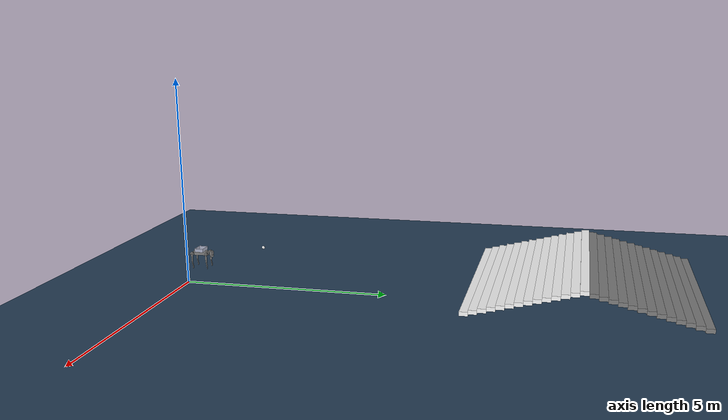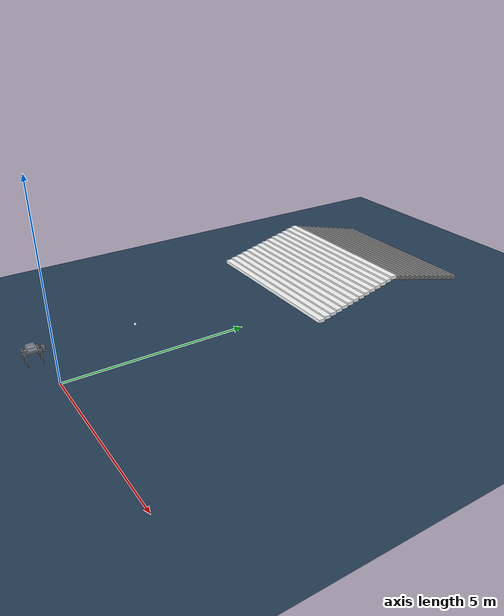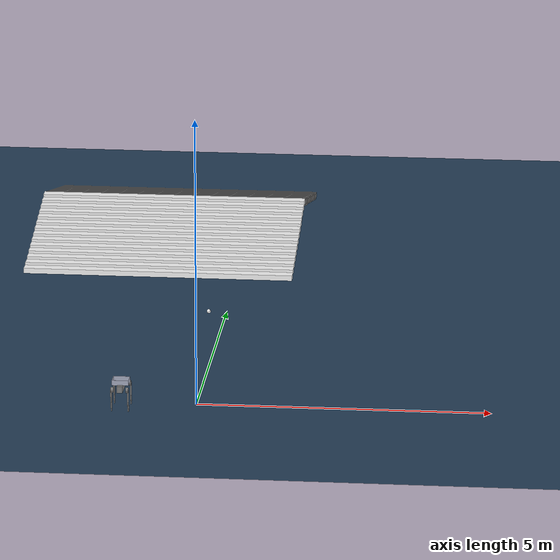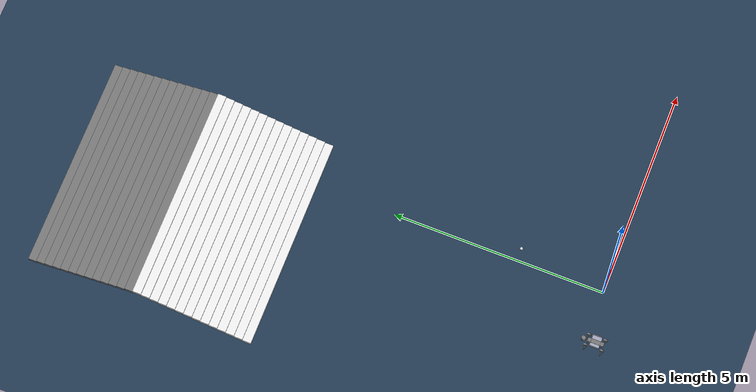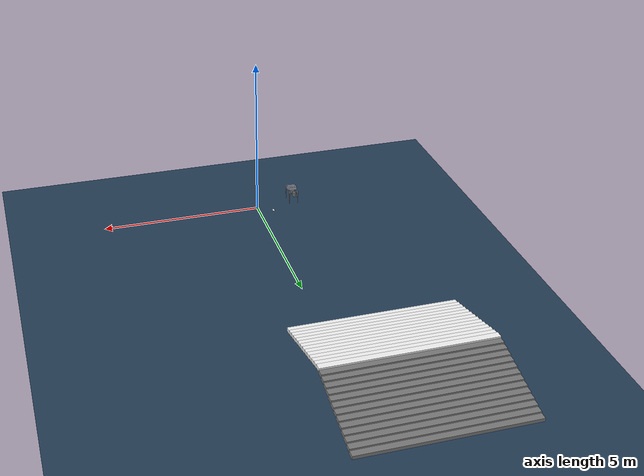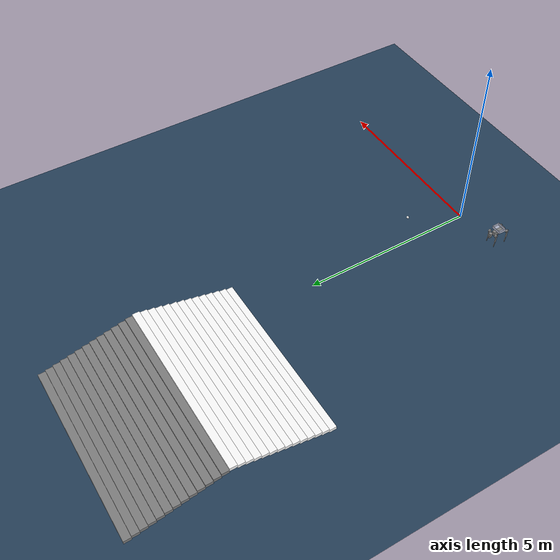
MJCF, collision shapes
<mujoco model="go2 scene">
  <include file="go2.xml" />
  <option timestep="0.005"/>

  <statistic center="0 0 0.1" extent="0.8" />

  <visual>
    <headlight diffuse="0.6 0.6 0.6" ambient="0.3 0.3 0.3" specular="0 0 0" />
    <rgba haze="0.15 0.25 0.35 1" />
    <global azimuth="-130" elevation="-20" />
  </visual>

  <asset>
    <texture type="skybox" builtin="gradient" rgb1="0.3 0.5 0.7" rgb2="0 0 0" width="512" height="3072" />
    <texture type="2d" name="groundplane" builtin="checker" mark="edge" rgb1="0.2 0.3 0.4" rgb2="0.1 0.2 0.3" markrgb="0.8 0.8 0.8" width="300" height="300" />
    <material name="groundplane" texture="groundplane" texuniform="true" texrepeat="5 5" reflectance="0.2" />
    <hfield name="perlin_hfield" size="1.25 0.75 0.125 0.125" file="../height_field.png" />
    <hfield name="image_hfield" size="1.0 1.0 0.02 0.1" file="../unitree_hfield.png" />
  </asset>

  <worldbody>
    <light pos="0 0 1.5" dir="0 0 -1" directional="true" />
    <geom name="floor" size="0 0 0.05" type="plane" material="groundplane" />
    <!-- ball -->
  <body name="ball_body" pos="0.0 2.0 1.0">
    <joint type="free" name="ball_joint"/>
    <geom type="sphere" size="0.035" rgba="1.0 1.0 1.0 1.0" mass="0.1" contype="1" conaffinity="1"/>
</body>

    <geom pos="-1.5 7 0.05" type="box" size="0.1 2.5 0.05" quat="0.707 0 0 0.707" rgba="1 1 1 0.8" />
    <geom pos="-1.5 7.2 0.1" type="box" size="0.1 2.5 0.05" quat="0.707 0 0 0.707" rgba="1 1 1 0.8"/>
    <geom pos="-1.5 7.4 0.15" type="box" size="0.1 2.5 0.05" quat="0.707 0 0 0.707" rgba="1 1 1 0.8"/>
    <geom pos="-1.5 7.6 0.2" type="box" size="0.1 2.5 0.05" quat="0.707 0 0 0.707" rgba="1 1 1 0.8"/>
    <geom pos="-1.5 7.8 0.25" type="box" size="0.1 2.5 0.05" quat="0.707 0 0 0.707" rgba="1 1 1 0.8"/>
    <geom pos="-1.5 8.0 0.3" type="box" size="0.1 2.5 0.05" quat="0.707 0 0 0.707" rgba="1 1 1 0.8"/>
    <geom pos="-1.5 8.2 0.35" type="box" size="0.1 2.5 0.05" quat="0.707 0 0 0.707" rgba="1 1 1 0.8"/>
    <geom pos="-1.5 8.4 0.4" type="box" size="0.1 2.5 0.05" quat="0.707 0 0 0.707" rgba="1 1 1 0.8"/>
    <geom pos="-1.5 8.6 0.45" type="box" size="0.1 2.5 0.05" quat="0.707 0 0 0.707" rgba="1 1 1 0.8"/>
    <geom pos="-1.5 8.8 0.5" type="box" size="0.1 2.5 0.05" quat="0.707 0 0 0.707" rgba="1 1 1 0.8"/>
    <geom pos="-1.5 9.0 0.55" type="box" size="0.1 2.5 0.05" quat="0.707 0 0 0.707" rgba="1 1 1 0.8"/>
    <geom pos="-1.5 9.2 0.6" type="box" size="0.1 2.5 0.05" quat="0.707 0 0 0.707" rgba="1 1 1 0.8"/>
    <geom pos="-1.5 9.4 0.65" type="box" size="0.1 2.5 0.05" quat="0.707 0 0 0.707" rgba="1 1 1 0.8"/>
    <geom pos="-1.5 9.6 0.7" type="box" size="0.1 2.5 0.05" quat="0.707 0 0 0.707" rgba="1 1 1 0.8"/>

    <geom pos="-1.5 9.6 0.7" type="box" size="0.1 2.5 0.05" quat="0.707 0 0 0.707" />
    <geom pos="-1.5 9.8 0.65" type="box" size="0.1 2.5 0.05" quat="0.707 0 0 0.707" />
    <geom pos="-1.5 10.0 0.6" type="box" size="0.1 2.5 0.05" quat="0.707 0 0 0.707" />
    <geom pos="-1.5 10.2 0.55" type="box" size="0.1 2.5 0.05" quat="0.707 0 0 0.707" />
    <geom pos="-1.5 10.4 0.5" type="box" size="0.1 2.5 0.05" quat="0.707 0 0 0.707" />
    <geom pos="-1.5 10.6 0.45" type="box" size="0.1 2.5 0.05" quat="0.707 0 0 0.707" />
    <geom pos="-1.5 10.8 0.4" type="box" size="0.1 2.5 0.05" quat="0.707 0 0 0.707" />
    <geom pos="-1.5 11.0 0.35" type="box" size="0.1 2.5 0.05" quat="0.707 0 0 0.707" />
    <geom pos="-1.5 11.2 0.3" type="box" size="0.1 2.5 0.05" quat="0.707 0 0 0.707" />
    <geom pos="-1.5 11.4 0.25" type="box" size="0.1 2.5 0.05" quat="0.707 0 0 0.707" />
    <geom pos="-1.5 11.6 0.2" type="box" size="0.1 2.5 0.05" quat="0.707 0 0 0.707" />
    <geom pos="-1.5 11.8 0.15" type="box" size="0.1 2.5 0.05" quat="0.707 0 0 0.707" />
    <geom pos="-1.5 12.0 0.1" type="box" size="0.1 2.5 0.05" quat="0.707 0 0 0.707" />
    <geom pos="-1.5 12.2 0.05" type="box" size="0.1 2.5 0.05" quat="0.707 0 0 0.707" /> -->
  </worldbody>
</mujoco>

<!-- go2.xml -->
<mujoco model="go2">
  <compiler angle="radian" meshdir="assets" autolimits="true" />

  <option cone="elliptic" impratio="100" />

  <default>
    <default class="go2">
      <geom friction="0.4" margin="0.001" condim="1"/>
      <joint axis="0 1 0" damping="0.1" armature="0.01" frictionloss="0.2"/>
      <motor ctrlrange="-23.7 23.7"/>
      <default class="abduction">
        <joint axis="1 0 0" range="-1.0472 1.0472"/>
      </default>
      <default class="hip">
        <default class="front_hip">
          <joint range="-1.5708 3.4907"/>
        </default>
        <default class="back_hip">
          <joint range="-0.5236 4.5379"/>
        </default>
      </default>
      <default class="knee">
        <joint range="-2.7227 -0.83776"/>
        <motor ctrlrange="-45.43 45.43"/>
      </default>
      <default class="visual">
        <geom type="mesh" contype="0" conaffinity="0" group="2"/>
      </default>
      <default class="collision">
        <geom group="3"/>
        <default class="foot">
          <geom size="0.022" pos="-0.002 0 -0.213" priority="1" condim="6" friction="0.4 0.02 0.01"/>
        </default>
      </default>
    </default>
  </default>

  <asset>
    <material name="metal" rgba=".9 .95 .95 1" />
    <material name="black" rgba="0 0 0 1" />
    <material name="white" rgba="1 1 1 1" />
    <material name="gray" rgba="0.671705 0.692426 0.774270 0.5" />
    <mesh file="base_0.obj" />
    <mesh file="base_1.obj" />
    <mesh file="base_2.obj" />
    <mesh file="base_3.obj" />
    <mesh file="base_4.obj" />
    <mesh file="hip_0.obj" />
    <mesh file="hip_1.obj" />
    <mesh file="thigh_0.obj" />
    <mesh file="thigh_1.obj" />
    <mesh file="thigh_mirror_0.obj" />
    <mesh file="thigh_mirror_1.obj" />
    <mesh file="calf_0.obj" />
    <mesh file="calf_1.obj" />
    <mesh file="calf_mirror_0.obj" />
    <mesh file="calf_mirror_1.obj" />
    <mesh file="foot.obj" />
  </asset>

  <worldbody>
    <body name="base_link" pos="-1.25 -0.25 0.37" quat='0.707 0 0 0.707' childclass="go2">
      <inertial pos="0.021112 0 -0.005366" quat="-0.000543471 0.713435 -0.00173769 0.700719" mass="6.921" diaginertia="0.107027 0.0980771 0.0244531" />
      <freejoint />
      <geom mesh="base_0" material="black" class="visual" />
      <geom mesh="base_1" material="black" class="visual" />
      <geom mesh="base_2" material="black" class="visual" />
      <geom mesh="base_3" material="white" class="visual" />
      <geom mesh="base_4" material="gray" class="visual" />
      <geom size="0.1881 0.04675 0.057" type="box" class="collision" />
      <geom size="0.05 0.045" pos="0.285 0 0.01" type="cylinder" class="collision" />
      <geom size="0.047" pos="0.293 0 -0.06" class="collision" />
      <site name="imu" pos="-0.02557 0 0.04232" />

      <body name="box_back" pos="0 0.0 0.05">

        <geom name="box_base" type="box" size="0.11 0.14 0.001" pos="0 0 0.0" mass="0.01" material="gray"/>
        <geom name="box_side1" type="box" size="0.001 0.14 0.045" pos="0.11 0 0.045" mass="0.01" material="gray"/>
        <geom name="box_side2" type="box" size="0.001 0.14 0.045" pos="-0.11 0 0.045" mass="0.01" material="gray"/>
        <geom name="box_side3" type="box" size="0.11 0.001 0.045" pos="0 0.14 0.045" mass="0.01" material="gray"/>
        <geom name="box_side4" type="box" size="0.11 0.001 0.045" pos="0 -0.14 0.045" mass="0.01" material="gray"/>

      </body>
      <body name="FL_hip" pos="0.1934 0.0465 0">
        <inertial pos="-0.0054 0.00194 -0.000105" quat="0.497014 0.499245 0.505462 0.498237" mass="0.678" diaginertia="0.00088403 0.000596003 0.000479967" />
        <joint name="FL_hip_joint" class="abduction" />
        <geom mesh="hip_0" material="metal" class="visual" />
        <geom mesh="hip_1" material="gray" class="visual" />
        <geom size="0.046 0.02" pos="0 0.08 0" quat="1 1 0 0" type="cylinder" class="collision" />
        <body name="FL_thigh" pos="0 0.0955 0">
          <inertial pos="-0.00374 -0.0223 -0.0327" quat="0.829533 0.0847635 -0.0200632 0.551623" mass="1.152" diaginertia="0.00594973 0.00584149 0.000878787" />
          <joint name="FL_thigh_joint" class="front_hip" />
          <geom mesh="thigh_0" material="metal" class="visual" />
          <geom mesh="thigh_1" material="gray" class="visual" />
          <geom size="0.1065 0.01225 0.017" pos="0 0 -0.1065" quat="0.707107 0 0.707107 0" type="box" class="collision" />
          <body name="FL_calf" pos="0 0 -0.213">
            <inertial pos="0.00629595 -0.000622121 -0.141417" quat="0.710672 0.00154099 -0.00450087 0.703508" mass="0.241352" diaginertia="0.0014901 0.00146356 5.31397e-05" />
            <joint name="FL_calf_joint" class="knee" />
            <geom mesh="calf_0" material="gray" class="visual" />
            <geom mesh="calf_1" material="black" class="visual" />
            <geom size="0.012 0.06" pos="0.008 0 -0.06" quat="0.994493 0 -0.104807 0" type="cylinder" class="collision" />
            <geom size="0.011 0.0325" pos="0.02 0 -0.148" quat="0.999688 0 0.0249974 0" type="cylinder" class="collision" />
            <geom pos="0 0 -0.213" mesh="foot" class="visual" material="black" />
            <geom name="FL" class="foot" />
            <body name="FL_foot" pos="0 0 -0.213" />
          </body>
        </body>
      </body>
      <body name="FR_hip" pos="0.1934 -0.0465 0">
        <inertial pos="-0.0054 -0.00194 -0.000105" quat="0.498237 0.505462 0.499245 0.497014" mass="0.678" diaginertia="0.00088403 0.000596003 0.000479967" />
        <joint name="FR_hip_joint" class="abduction" />
        <geom mesh="hip_0" material="metal" class="visual" quat="4.63268e-05 1 0 0" />
        <geom mesh="hip_1" material="gray" class="visual" quat="4.63268e-05 1 0 0" />
        <geom size="0.046 0.02" pos="0 -0.08 0" quat="0.707107 0.707107 0 0" type="cylinder" class="collision" />
        <body name="FR_thigh" pos="0 -0.0955 0">
          <inertial pos="-0.00374 0.0223 -0.0327" quat="0.551623 -0.0200632 0.0847635 0.829533" mass="1.152" diaginertia="0.00594973 0.00584149 0.000878787" />
          <joint name="FR_thigh_joint" class="front_hip" />
          <geom mesh="thigh_mirror_0" material="metal" class="visual" />
          <geom mesh="thigh_mirror_1" material="gray" class="visual" />
          <geom size="0.1065 0.01225 0.017" pos="0 0 -0.1065" quat="0.707107 0 0.707107 0" type="box" class="collision" />
          <body name="FR_calf" pos="0 0 -0.213">
            <inertial pos="0.00629595 0.000622121 -0.141417" quat="0.703508 -0.00450087 0.00154099 0.710672" mass="0.241352" diaginertia="0.0014901 0.00146356 5.31397e-05" />
            <joint name="FR_calf_joint" class="knee" />
            <geom mesh="calf_mirror_0" material="gray" class="visual" />
            <geom mesh="calf_mirror_1" material="black" class="visual" />
            <geom size="0.013 0.06" pos="0.01 0 -0.06" quat="0.995004 0 -0.0998334 0" type="cylinder" class="collision" />
            <geom size="0.011 0.0325" pos="0.02 0 -0.148" quat="0.999688 0 0.0249974 0" type="cylinder" class="collision" />
            <geom pos="0 0 -0.213" mesh="foot" class="visual" material="black" />
            <geom name="FR" class="foot" />
            <body name="FR_foot" pos="0 0 -0.213" />
          </body>
        </body>
      </body>
      <body name="RL_hip" pos="-0.1934 0.0465 0">
        <inertial pos="0.0054 0.00194 -0.000105" quat="0.505462 0.498237 0.497014 0.499245" mass="0.678" diaginertia="0.00088403 0.000596003 0.000479967" />
        <joint name="RL_hip_joint" class="abduction" />
        <geom mesh="hip_0" material="metal" class="visual" quat="4.63268e-05 0 1 0" />
        <geom mesh="hip_1" material="gray" class="visual" quat="4.63268e-05 0 1 0" />
        <geom size="0.046 0.02" pos="0 0.08 0" quat="0.707107 0.707107 0 0" type="cylinder" class="collision" />
        <body name="RL_thigh" pos="0 0.0955 0">
          <inertial pos="-0.00374 -0.0223 -0.0327" quat="0.829533 0.0847635 -0.0200632 0.551623" mass="1.152" diaginertia="0.00594973 0.00584149 0.000878787" />
          <joint name="RL_thigh_joint" class="back_hip" />
          <geom mesh="thigh_0" material="metal" class="visual" />
          <geom mesh="thigh_1" material="gray" class="visual" />
          <geom size="0.1065 0.01225 0.017" pos="0 0 -0.1065" quat="0.707107 0 0.707107 0" type="box" class="collision" />
          <body name="RL_calf" pos="0 0 -0.213">
            <inertial pos="0.00629595 -0.000622121 -0.141417" quat="0.710672 0.00154099 -0.00450087 0.703508" mass="0.241352" diaginertia="0.0014901 0.00146356 5.31397e-05" />
            <joint name="RL_calf_joint" class="knee" />
            <geom mesh="calf_0" material="gray" class="visual" />
            <geom mesh="calf_1" material="black" class="visual" />
            <geom size="0.013 0.06" pos="0.01 0 -0.06" quat="0.995004 0 -0.0998334 0" type="cylinder" class="collision" />
            <geom size="0.011 0.0325" pos="0.02 0 -0.148" quat="0.999688 0 0.0249974 0" type="cylinder" class="collision" />
            <geom pos="0 0 -0.213" mesh="foot" class="visual" material="black" />
            <geom name="RL" class="foot" />
            <body name="RL_foot" pos="0 0 -0.213" />
          </body>
        </body>
      </body>
      <body name="RR_hip" pos="-0.1934 -0.0465 0">
        <inertial pos="0.0054 -0.00194 -0.000105" quat="0.499245 0.497014 0.498237 0.505462" mass="0.678" diaginertia="0.00088403 0.000596003 0.000479967" />
        <joint name="RR_hip_joint" class="abduction" />
        <geom mesh="hip_0" material="metal" class="visual" quat="2.14617e-09 4.63268e-05 4.63268e-05 -1" />
        <geom mesh="hip_1" material="gray" class="visual" quat="2.14617e-09 4.63268e-05 4.63268e-05 -1" />
        <geom size="0.046 0.02" pos="0 -0.08 0" quat="0.707107 0.707107 0 0" type="cylinder" class="collision" />
        <body name="RR_thigh" pos="0 -0.0955 0">
          <inertial pos="-0.00374 0.0223 -0.0327" quat="0.551623 -0.0200632 0.0847635 0.829533" mass="1.152" diaginertia="0.00594973 0.00584149 0.000878787" />
          <joint name="RR_thigh_joint" class="back_hip" />
          <geom mesh="thigh_mirror_0" material="metal" class="visual" />
          <geom mesh="thigh_mirror_1" material="gray" class="visual" />
          <geom size="0.1065 0.01225 0.017" pos="0 0 -0.1065" quat="0.707107 0 0.707107 0" type="box" class="collision" />
          <body name="RR_calf" pos="0 0 -0.213">
            <inertial pos="0.00629595 0.000622121 -0.141417" quat="0.703508 -0.00450087 0.00154099 0.710672" mass="0.241352" diaginertia="0.0014901 0.00146356 5.31397e-05" />
            <joint name="RR_calf_joint" class="knee" />
            <geom mesh="calf_mirror_0" material="gray" class="visual" />
            <geom mesh="calf_mirror_1" material="black" class="visual" />
            <geom size="0.013 0.06" pos="0.01 0 -0.06" quat="0.995004 0 -0.0998334 0" type="cylinder" class="collision" />
            <geom size="0.011 0.0325" pos="0.02 0 -0.148" quat="0.999688 0 0.0249974 0" type="cylinder" class="collision" />
            <geom pos="0 0 -0.213" mesh="foot" class="visual" material="black" />
            <geom name="RR" class="foot" />
            <body name="RR_foot" pos="0 0 -0.213" />
          </body>
        </body>
      </body>
    </body>
  </worldbody>

  <actuator>

    <motor class="abduction" name="FL_hip" joint="FL_hip_joint" />
    <motor class="hip" name="FL_thigh" joint="FL_thigh_joint" />
    <motor class="knee" name="FL_calf" joint="FL_calf_joint" />

    <motor class="abduction" name="FR_hip" joint="FR_hip_joint" />
    <motor class="hip" name="FR_thigh" joint="FR_thigh_joint" />
    <motor class="knee" name="FR_calf" joint="FR_calf_joint" />

    <motor class="abduction" name="RL_hip" joint="RL_hip_joint" />
    <motor class="hip" name="RL_thigh" joint="RL_thigh_joint" />
    <motor class="knee" name="RL_calf" joint="RL_calf_joint" />

    <motor class="abduction" name="RR_hip" joint="RR_hip_joint" />
    <motor class="hip" name="RR_thigh" joint="RR_thigh_joint" />
    <motor class="knee" name="RR_calf" joint="RR_calf_joint" />

  </actuator>

  <sensor>

    <jointpos name="FL_hip_pos" joint="FL_hip_joint" />
    <jointpos name="FL_thigh_pos" joint="FL_thigh_joint" />
    <jointpos name="FL_calf_pos" joint="FL_calf_joint" />

    <jointpos name="FR_hip_pos" joint="FR_hip_joint" />
    <jointpos name="FR_thigh_pos" joint="FR_thigh_joint" />
    <jointpos name="FR_calf_pos" joint="FR_calf_joint" />

    <jointpos name="RL_hip_pos" joint="RL_hip_joint" />
    <jointpos name="RL_thigh_pos" joint="RL_thigh_joint" />
    <jointpos name="RL_calf_pos" joint="RL_calf_joint" />

    <jointpos name="RR_hip_pos" joint="RR_hip_joint" />
    <jointpos name="RR_thigh_pos" joint="RR_thigh_joint" />
    <jointpos name="RR_calf_pos" joint="RR_calf_joint" />

    <jointvel name="FL_hip_vel" joint="FL_hip_joint" />
    <jointvel name="FL_thigh_vel" joint="FL_thigh_joint" />
    <jointvel name="FL_calf_vel" joint="FL_calf_joint" />

    <jointvel name="FR_hip_vel" joint="FR_hip_joint" />
    <jointvel name="FR_thigh_vel" joint="FR_thigh_joint" />
    <jointvel name="FR_calf_vel" joint="FR_calf_joint" />

    <jointvel name="RL_hip_vel" joint="RL_hip_joint" />
    <jointvel name="RL_thigh_vel" joint="RL_thigh_joint" />
    <jointvel name="RL_calf_vel" joint="RL_calf_joint" />

    <jointvel name="RR_hip_vel" joint="RR_hip_joint" />
    <jointvel name="RR_thigh_vel" joint="RR_thigh_joint" />
    <jointvel name="RR_calf_vel" joint="RR_calf_joint" />

    <framequat name="imu_quat" objtype="site" objname="imu" />
    <gyro name="imu_gyro" site="imu" />
    <accelerometer name="imu_acc" site="imu" />

    <framepos name="frame_pos" objtype="site" objname="imu" />
    <framelinvel name="frame_vel" objtype="site" objname="imu" />
  </sensor>
</mujoco>
